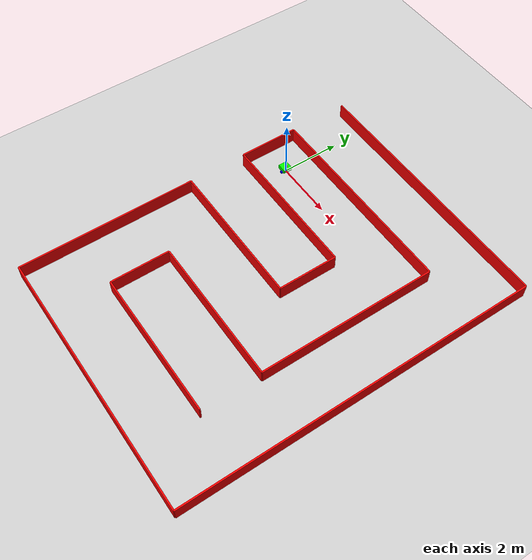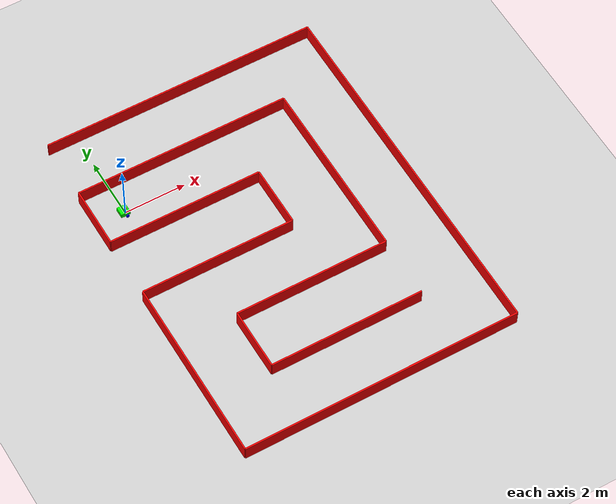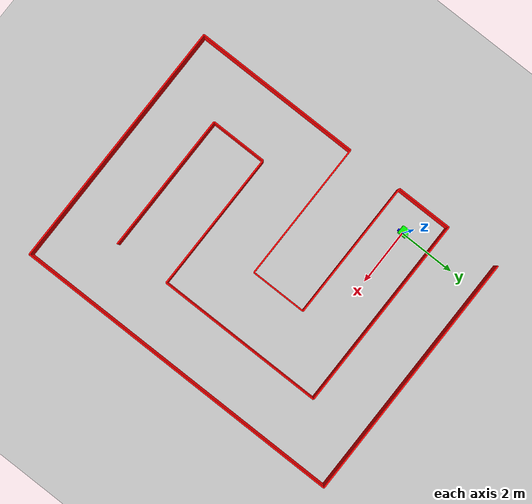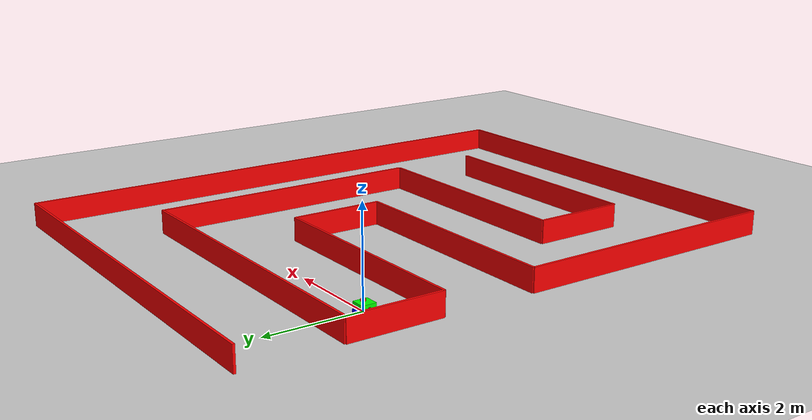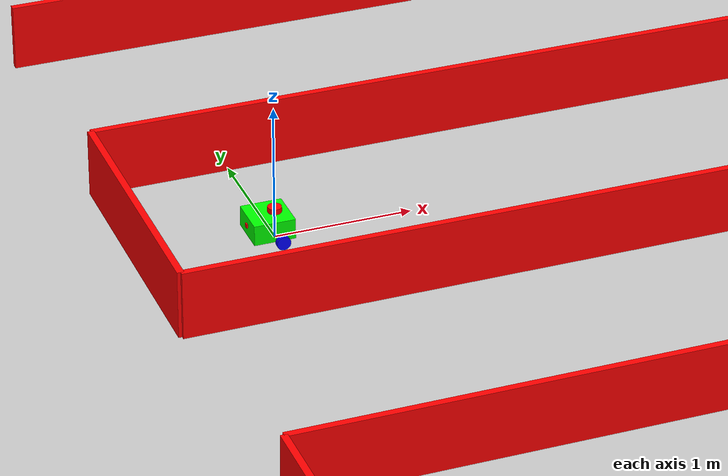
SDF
<?xml version="1.0" ?>
<sdf version="1.9">
    <world name="labexam1_4">
        <physics name="1ms" type="ignored">
            <max_step_size>0.001</max_step_size>
            <real_time_factor>1.0</real_time_factor>
        </physics>
        <plugin
        filename="libignition-gazebo-physics-system.so"
        name="ignition::gazebo::systems::Physics">
        </plugin>
        <plugin
        filename="libignition-gazebo-user-commands-system.so"
        name="ignition::gazebo::systems::UserCommands">
        </plugin>
        <plugin
        filename="libignition-gazebo-scene-broadcaster-system.so"
        name="ignition::gazebo::systems::SceneBroadcaster">
        </plugin>

        <plugin
        filename="libignition-gazebo-sensors-system.so"
        name="ignition::gazebo::systems::Sensors">
            <render_engine>ogre2</render_engine>
        </plugin>

        <light type="directional" name="sun">
            <cast_shadows>true</cast_shadows>
            <pose>0 0 10 0 0 0</pose>
            <diffuse>0.8 0.8 0.8 1</diffuse>
            <specular>0.2 0.2 0.2 1</specular>
            <attenuation>
                <range>1000</range>
                <constant>0.9</constant>
                <linear>0.01</linear>
                <quadratic>0.001</quadratic>
            </attenuation>
            <direction>0.5 0.5 -0.9</direction>
        </light>

        <model name="ground_plane">
            <static>true</static>
            <link name="link">
                <collision name="collision">
                    <geometry>
                        <plane>
                            <normal>0 0 1</normal>
                        </plane>
                    </geometry>
                </collision>
                <visual name="visual">
                    <geometry>
                        <plane>
                            <normal>0 0 1</normal>
                            <size>100 100</size>
                        </plane>
                    </geometry>
                    <material>
                        <ambient>0.8 0.8 0.8 1</ambient>
                        <diffuse>0.8 0.8 0.8 1</diffuse>
                        <specular>0.8 0.8 0.8 1</specular>
                    </material>
                </visual>
            </link>
        </model>

        <include>
            <name>robot1</name>
            <uri>file://src/lab_exam1/description/robot.sdf</uri>
        </include>

        <model name="maze">
            <pose>0 0 0 0 0 0</pose>
            <include>
                <uri>file://src/lab_exam1/description/maze.sdf</uri>
            </include>
        </model>
    </world>
</sdf>

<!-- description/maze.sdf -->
<sdf version='1.9'>
  <model name='castle'>
    <link name='base_link'>
      <inertial>
        <pose>2.807692307692308 -3.076923076923077 0.25 0 0 0</pose>
        <mass>6.5</mass>
        <inertia>
          <ixx>80.097684294871783</ixx>
          <ixy>-0.90384615384616041</ixy>
          <ixz>0</ixz>
          <iyy>51.228990384615351</iyy>
          <iyz>0</iyz>
          <izz>131.0558413461539</izz>
        </inertia>
      </inertial>
      <collision name='base_link_fixed_joint_lump__wall_10_collision'>
        <pose>3.5 -7 0.25 0 0 0</pose>
        <geometry>
          <box>
            <size>5 0.05 0.5</size>
          </box>
        </geometry>
      </collision>
      <collision name='base_link_fixed_joint_lump__wall_11_collision_1'>
        <pose>3.5 -9 0.25 0 0 0</pose>
        <geometry>
          <box>
            <size>9 0.05 0.5</size>
          </box>
        </geometry>
      </collision>
      <collision name='base_link_fixed_joint_lump__wall_12_collision_2'>
        <pose>8 -3 0.25 0 0 1.570796326794896</pose>
        <geometry>
          <box>
            <size>12 0.05 0.5</size>
          </box>
        </geometry>
      </collision>
      <collision name='base_link_fixed_joint_lump__wall_13_collision_3'>
        <pose>3.5 3 0.25 0 0 0</pose>
        <geometry>
          <box>
            <size>9 0.05 0.5</size>
          </box>
        </geometry>
      </collision>
      <collision name='base_link_fixed_joint_lump__wall_1_collision_4'>
        <pose>-1 0 0.25 0 0 1.570796326794896</pose>
        <geometry>
          <box>
            <size>2 0.05 0.5</size>
          </box>
        </geometry>
      </collision>
      <collision name='base_link_fixed_joint_lump__wall_2_collision_5'>
        <pose>2.5 1 0.25 0 0 0</pose>
        <geometry>
          <box>
            <size>7 0.05 0.5</size>
          </box>
        </geometry>
      </collision>
      <collision name='base_link_fixed_joint_lump__wall_3_collision_6'>
        <pose>1.5 -1 0.25 0 0 0</pose>
        <geometry>
          <box>
            <size>5 0.05 0.5</size>
          </box>
        </geometry>
      </collision>
      <collision name='base_link_fixed_joint_lump__wall_4_collision_7'>
        <pose>6 -2 0.25 0 0 1.570796326794896</pose>
        <geometry>
          <box>
            <size>6 0.05 0.5</size>
          </box>
        </geometry>
      </collision>
      <collision name='base_link_fixed_joint_lump__wall_5_collision_8'>
        <pose>4 -2 0.25 0 0 1.570796326794896</pose>
        <geometry>
          <box>
            <size>2 0.05 0.5</size>
          </box>
        </geometry>
      </collision>
      <collision name='base_link_fixed_joint_lump__wall_6_collision_9'>
        <pose>1.5 -3 0.25 0 0 0</pose>
        <geometry>
          <box>
            <size>5 0.05 0.5</size>
          </box>
        </geometry>
      </collision>
      <collision name='base_link_fixed_joint_lump__wall_7_collision_10'>
        <pose>3.5 -5 0.25 0 0 0</pose>
        <geometry>
          <box>
            <size>5 0.05 0.5</size>
          </box>
        </geometry>
      </collision>
      <collision name='base_link_fixed_joint_lump__wall_8_collision_11'>
        <pose>-1 -6 0.25 0 0 1.570796326794896</pose>
        <geometry>
          <box>
            <size>6 0.05 0.5</size>
          </box>
        </geometry>
      </collision>
      <collision name='base_link_fixed_joint_lump__wall_9_collision_12'>
        <pose>1 -6 0.25 0 0 1.570796326794896</pose>
        <geometry>
          <box>
            <size>2 0.05 0.5</size>
          </box>
        </geometry>
      </collision>
      <visual name='base_link_fixed_joint_lump__wall_10_visual'>
        <pose>3.5 -7 0.25 0 0 0</pose>
        <geometry>
          <box>
            <size>5 0.05 0.5</size>
          </box>
        </geometry>
        <material>
          <diffuse>1 0 0 1</diffuse>
          <ambient>1 0 0 1</ambient>
        </material>
      </visual>
      <visual name='base_link_fixed_joint_lump__wall_11_visual_1'>
        <pose>3.5 -9 0.25 0 0 0</pose>
        <geometry>
          <box>
            <size>9 0.05 0.5</size>
          </box>
        </geometry>
        <material>
          <diffuse>1 0 0 1</diffuse>
          <ambient>1 0 0 1</ambient>
        </material>
      </visual>
      <visual name='base_link_fixed_joint_lump__wall_12_visual_2'>
        <pose>8 -3 0.25 0 0 1.570796326794896</pose>
        <geometry>
          <box>
            <size>12 0.05 0.5</size>
          </box>
        </geometry>
        <material>
          <diffuse>1 0 0 1</diffuse>
          <ambient>1 0 0 1</ambient>
        </material>
      </visual>
      <visual name='base_link_fixed_joint_lump__wall_13_visual_3'>
        <pose>3.5 3 0.25 0 0 0</pose>
        <geometry>
          <box>
            <size>9 0.05 0.5</size>
          </box>
        </geometry>
        <material>
          <diffuse>1 0 0 1</diffuse>
          <ambient>1 0 0 1</ambient>
        </material>
      </visual>
      <visual name='base_link_fixed_joint_lump__wall_1_visual_4'>
        <pose>-1 0 0.25 0 0 1.570796326794896</pose>
        <geometry>
          <box>
            <size>2 0.05 0.5</size>
          </box>
        </geometry>
        <material>
          <diffuse>1 0 0 1</diffuse>
          <ambient>1 0 0 1</ambient>
        </material>
      </visual>
      <visual name='base_link_fixed_joint_lump__wall_2_visual_5'>
        <pose>2.5 1 0.25 0 0 0</pose>
        <geometry>
          <box>
            <size>7 0.05 0.5</size>
          </box>
        </geometry>
        <material>
          <diffuse>1 0 0 1</diffuse>
          <ambient>1 0 0 1</ambient>
        </material>
      </visual>
      <visual name='base_link_fixed_joint_lump__wall_3_visual_6'>
        <pose>1.5 -1 0.25 0 0 0</pose>
        <geometry>
          <box>
            <size>5 0.05 0.5</size>
          </box>
        </geometry>
        <material>
          <diffuse>1 0 0 1</diffuse>
          <ambient>1 0 0 1</ambient>
        </material>
      </visual>
      <visual name='base_link_fixed_joint_lump__wall_4_visual_7'>
        <pose>6 -2 0.25 0 0 1.570796326794896</pose>
        <geometry>
          <box>
            <size>6 0.05 0.5</size>
          </box>
        </geometry>
        <material>
          <diffuse>1 0 0 1</diffuse>
          <ambient>1 0 0 1</ambient>
        </material>
      </visual>
      <visual name='base_link_fixed_joint_lump__wall_5_visual_8'>
        <pose>4 -2 0.25 0 0 1.570796326794896</pose>
        <geometry>
          <box>
            <size>2 0.05 0.5</size>
          </box>
        </geometry>
        <material>
          <diffuse>1 0 0 1</diffuse>
          <ambient>1 0 0 1</ambient>
        </material>
      </visual>
      <visual name='base_link_fixed_joint_lump__wall_6_visual_9'>
        <pose>1.5 -3 0.25 0 0 0</pose>
        <geometry>
          <box>
            <size>5 0.05 0.5</size>
          </box>
        </geometry>
        <material>
          <diffuse>1 0 0 1</diffuse>
          <ambient>1 0 0 1</ambient>
        </material>
      </visual>
      <visual name='base_link_fixed_joint_lump__wall_7_visual_10'>
        <pose>3.5 -5 0.25 0 0 0</pose>
        <geometry>
          <box>
            <size>5 0.05 0.5</size>
          </box>
        </geometry>
        <material>
          <diffuse>1 0 0 1</diffuse>
          <ambient>1 0 0 1</ambient>
        </material>
      </visual>
      <visual name='base_link_fixed_joint_lump__wall_8_visual_11'>
        <pose>-1 -6 0.25 0 0 1.570796326794896</pose>
        <geometry>
          <box>
            <size>6 0.05 0.5</size>
          </box>
        </geometry>
        <material>
          <diffuse>1 0 0 1</diffuse>
          <ambient>1 0 0 1</ambient>
        </material>
      </visual>
      <visual name='base_link_fixed_joint_lump__wall_9_visual_12'>
        <pose>1 -6 0.25 0 0 1.570796326794896</pose>
        <geometry>
          <box>
            <size>2 0.05 0.5</size>
          </box>
        </geometry>
        <material>
          <diffuse>1 0 0 1</diffuse>
          <ambient>1 0 0 1</ambient>
        </material>
      </visual>
    </link>
    <frame name='wall_10_joint' attached_to='base_link'>
      <pose>3.5 -7 0.25 0 -0 0</pose>
    </frame>
    <frame name='wall_10' attached_to='wall_10_joint'/>
    <frame name='wall_11_joint' attached_to='base_link'>
      <pose>3.5 -9 0.25 0 -0 0</pose>
    </frame>
    <frame name='wall_11' attached_to='wall_11_joint'/>
    <frame name='wall_12_joint' attached_to='base_link'>
      <pose>8 -3 0.25 0 -0 1.5708</pose>
    </frame>
    <frame name='wall_12' attached_to='wall_12_joint'/>
    <frame name='wall_13_joint' attached_to='base_link'>
      <pose>3.5 3 0.25 0 -0 0</pose>
    </frame>
    <frame name='wall_13' attached_to='wall_13_joint'/>
    <frame name='wall_1_joint' attached_to='base_link'>
      <pose>-1 0 0.25 0 -0 1.5708</pose>
    </frame>
    <frame name='wall_1' attached_to='wall_1_joint'/>
    <frame name='wall_2_joint' attached_to='base_link'>
      <pose>2.5 1 0.25 0 -0 0</pose>
    </frame>
    <frame name='wall_2' attached_to='wall_2_joint'/>
    <frame name='wall_3_joint' attached_to='base_link'>
      <pose>1.5 -1 0.25 0 -0 0</pose>
    </frame>
    <frame name='wall_3' attached_to='wall_3_joint'/>
    <frame name='wall_4_joint' attached_to='base_link'>
      <pose>6 -2 0.25 0 -0 1.5708</pose>
    </frame>
    <frame name='wall_4' attached_to='wall_4_joint'/>
    <frame name='wall_5_joint' attached_to='base_link'>
      <pose>4 -2 0.25 0 -0 1.5708</pose>
    </frame>
    <frame name='wall_5' attached_to='wall_5_joint'/>
    <frame name='wall_6_joint' attached_to='base_link'>
      <pose>1.5 -3 0.25 0 -0 0</pose>
    </frame>
    <frame name='wall_6' attached_to='wall_6_joint'/>
    <frame name='wall_7_joint' attached_to='base_link'>
      <pose>3.5 -5 0.25 0 -0 0</pose>
    </frame>
    <frame name='wall_7' attached_to='wall_7_joint'/>
    <frame name='wall_8_joint' attached_to='base_link'>
      <pose>-1 -6 0.25 0 -0 1.5708</pose>
    </frame>
    <frame name='wall_8' attached_to='wall_8_joint'/>
    <frame name='wall_9_joint' attached_to='base_link'>
      <pose>1 -6 0.25 0 -0 1.5708</pose>
    </frame>
    <frame name='wall_9' attached_to='wall_9_joint'/>
  </model>
</sdf>

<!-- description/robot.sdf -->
<sdf version='1.9'>
  <model name='robot'>
    <link name='base_link'>
      <inertial>
        <pose>0.103125 0 0.0340625 0 0 0</pose>
        <mass>1.6000000000000001</mass>
        <inertia>
          <ixx>0.0096094270833333318</ixx>
          <ixy>0</ixy>
          <ixz>0.0037453124999999999</ixz>
          <iyy>0.013443802083333329</iyy>
          <iyz>0</iyz>
          <izz>0.012459375</izz>
        </inertia>
      </inertial>
      <collision name='base_link_fixed_joint_lump__chassis_collision'>
        <pose>0.04999999999999999 0 0.075 0 0 0</pose>
        <geometry>
          <box>
            <size>0.3 0.3 0.15</size>
          </box>
        </geometry>
      </collision>
      <collision name='base_link_fixed_joint_lump__caster_wheel_collision_1'>
        <pose>0.14 0 0 0 0 0</pose>
        <geometry>
          <sphere>
            <radius>0.050000000000000003</radius>
          </sphere>
        </geometry>
        <surface>
          <contact>
            <ode/>
          </contact>
          <friction>
            <ode>
              <mu>0</mu>
              <mu2>0</mu2>
            </ode>
          </friction>
        </surface>
      </collision>
      <collision name='base_link_fixed_joint_lump__laser_frame_collision_2'>
        <pose>0 0 0.17 0 0 0</pose>
        <geometry>
          <cylinder>
            <length>0.040000000000000001</length>
            <radius>0.050000000000000003</radius>
          </cylinder>
        </geometry>
        <surface>
          <contact>
            <ode/>
          </contact>
          <friction>
            <ode/>
          </friction>
        </surface>
      </collision>
      <visual name='base_link_fixed_joint_lump__chassis_visual'>
        <pose>0.04999999999999999 0 0.075 0 0 0</pose>
        <geometry>
          <box>
            <size>0.3 0.3 0.15</size>
          </box>
        </geometry>
        <material>
          <diffuse>0 1 0 1</diffuse>
          <ambient>0 1 0 1</ambient>
        </material>
      </visual>
      <visual name='base_link_fixed_joint_lump__camera_link_visual_1'>
        <pose>0.205 0 0.08 0 0 0</pose>
        <geometry>
          <box>
            <size>0.01 0.03 0.03</size>
          </box>
        </geometry>
        <material>
          <diffuse>1 0 0 1</diffuse>
          <ambient>1 0 0 1</ambient>
        </material>
      </visual>
      <visual name='base_link_fixed_joint_lump__caster_wheel_visual_2'>
        <pose>0.14 0 0 0 0 0</pose>
        <geometry>
          <sphere>
            <radius>0.050000000000000003</radius>
          </sphere>
        </geometry>
        <material>
          <diffuse>0 0 1 1</diffuse>
          <ambient>0 0 1 1</ambient>
        </material>
      </visual>
      <visual name='base_link_fixed_joint_lump__laser_frame_visual_3'>
        <pose>0 0 0.17 0 0 0</pose>
        <geometry>
          <cylinder>
            <length>0.040000000000000001</length>
            <radius>0.050000000000000003</radius>
          </cylinder>
        </geometry>
        <material>
          <diffuse>1 0 0 1</diffuse>
          <ambient>1 0 0 1</ambient>
        </material>
      </visual>
      <sensor name='camera' type='camera'>
        <camera>
          <horizontal_fov>1.089</horizontal_fov>
          <image>
            <format>R8G8B8</format>
            <width>640</width>
            <height>480</height>
          </image>
          <clip>
            <near>0.050000000000000003</near>
            <far>12</far>
          </clip>
        </camera>
        <always_on>true</always_on>
        <update_rate>30</update_rate>
        <visualize>true</visualize>
        <topic>camera/image_raw</topic>
        <pose>0.205 0 0.08 0 -0 0</pose>
      </sensor>
      <sensor name='lidar' type='gpu_lidar'>
        <pose relative_to='laser_frame'>0 0 0 0 0 0</pose>
        <topic>lidar</topic>
        <update_rate>10</update_rate>
        <ray>
          <scan>
            <horizontal>
              <samples>360</samples>
              <resolution>1</resolution>
              <min_angle>-3.1415926535897931</min_angle>
              <max_angle>3.1415926535897931</max_angle>
            </horizontal>
            <vertical>
              <samples>1</samples>
              <resolution>0.01</resolution>
              <min_angle>0</min_angle>
              <max_angle>0</max_angle>
            </vertical>
          </scan>
          <range>
            <min>0.050000000000000003</min>
            <max>10</max>
            <resolution>0.01</resolution>
          </range>
        </ray>
        <always_on>true</always_on>
        <visualize>true</visualize>
      </sensor>
    </link>
    <joint name='left_wheel_joint' type='revolute'>
      <pose relative_to='base_link'>0 0.175 0 -1.570796326794896 0 0</pose>
      <parent>base_link</parent>
      <child>left_wheel</child>
      <axis>
        <xyz>0 0 1</xyz>
        <limit>
          <lower>-10000000000000000</lower>
          <upper>10000000000000000</upper>
        </limit>
        <dynamics>
          <spring_reference>0</spring_reference>
          <spring_stiffness>0</spring_stiffness>
        </dynamics>
      </axis>
    </joint>
    <link name='left_wheel'>
      <pose relative_to='left_wheel_joint'>0 0 0 0 0 0</pose>
      <inertial>
        <pose>0 0 0 0 0 0</pose>
        <mass>0.10000000000000001</mass>
        <inertia>
          <ixx>7.5833333333333352e-05</ixx>
          <ixy>0</ixy>
          <ixz>0</ixz>
          <iyy>7.5833333333333352e-05</iyy>
          <iyz>0</iyz>
          <izz>0.000125</izz>
        </inertia>
      </inertial>
      <collision name='left_wheel_collision'>
        <pose>0 0 0 0 0 0</pose>
        <geometry>
          <cylinder>
            <length>0.040000000000000001</length>
            <radius>0.050000000000000003</radius>
          </cylinder>
        </geometry>
      </collision>
      <visual name='left_wheel_visual'>
        <pose>0 0 0 0 0 0</pose>
        <geometry>
          <cylinder>
            <length>0.040000000000000001</length>
            <radius>0.050000000000000003</radius>
          </cylinder>
        </geometry>
        <material>
          <diffuse>0 0 1 1</diffuse>
          <ambient>0 0 1 1</ambient>
        </material>
      </visual>
    </link>
    <joint name='right_wheel_joint' type='revolute'>
      <pose relative_to='base_link'>0 -0.175 0 1.570796326794896 0 0</pose>
      <parent>base_link</parent>
      <child>right_wheel</child>
      <axis>
        <xyz>0 0 -1</xyz>
        <limit>
          <lower>-10000000000000000</lower>
          <upper>10000000000000000</upper>
        </limit>
        <dynamics>
          <spring_reference>0</spring_reference>
          <spring_stiffness>0</spring_stiffness>
        </dynamics>
      </axis>
    </joint>
    <link name='right_wheel'>
      <pose relative_to='right_wheel_joint'>0 0 0 0 0 0</pose>
      <inertial>
        <pose>0 0 0 0 0 0</pose>
        <mass>0.10000000000000001</mass>
        <inertia>
          <ixx>7.5833333333333352e-05</ixx>
          <ixy>0</ixy>
          <ixz>0</ixz>
          <iyy>7.5833333333333352e-05</iyy>
          <iyz>0</iyz>
          <izz>0.000125</izz>
        </inertia>
      </inertial>
      <collision name='right_wheel_collision'>
        <pose>0 0 0 0 0 0</pose>
        <geometry>
          <cylinder>
            <length>0.040000000000000001</length>
            <radius>0.050000000000000003</radius>
          </cylinder>
        </geometry>
      </collision>
      <visual name='right_wheel_visual'>
        <pose>0 0 0 0 0 0</pose>
        <geometry>
          <cylinder>
            <length>0.040000000000000001</length>
            <radius>0.050000000000000003</radius>
          </cylinder>
        </geometry>
        <material>
          <diffuse>0 0 1 1</diffuse>
          <ambient>0 0 1 1</ambient>
        </material>
      </visual>
    </link>
    <pose>0 0 0.05 0 0 3.141592653589793</pose>
    <plugin name='ignition::gazebo::systems::DiffDrive' filename='libignition-gazebo-diff-drive-system.so'>
      <left_joint>left_wheel_joint</left_joint>
      <right_joint>right_wheel_joint</right_joint>
      <wheel_separation>0.3</wheel_separation>
      <wheel_radius>0.05</wheel_radius>
      <odom_publish_frequency>1</odom_publish_frequency>
      <topic>cmd_vel</topic>
    </plugin>
    <plugin name='ignition::gazebo::systems::JointStatePublisher' filename='libignition-gazebo-joint-state-publisher-system'/>
    <plugin name='ignition::gazebo::systems::OdometryPublisher' filename='libignition-gazebo-odometry-publisher-system'>
      <odom_frame>world</odom_frame>
      <robot_base_frame>base_link</robot_base_frame>
    </plugin>
    <frame name='camera_optical_joint' attached_to='camera_link'>
      <pose>0 0 0 -1.5708 -0 -1.5708</pose>
    </frame>
    <frame name='camera_link_optical' attached_to='camera_optical_joint'/>
    <frame name='camera_joint' attached_to='chassis'>
      <pose>0.305 0 0.08 0 -0 0</pose>
    </frame>
    <frame name='camera_link' attached_to='camera_joint'/>
    <frame name='caster_wheel_joint' attached_to='chassis'>
      <pose>0.24 0 0 0 -0 0</pose>
    </frame>
    <frame name='caster_wheel' attached_to='caster_wheel_joint'/>
    <frame name='laser_joint' attached_to='chassis'>
      <pose>0.1 0 0.17 0 -0 0</pose>
    </frame>
    <frame name='laser_frame' attached_to='laser_joint'/>
    <frame name='chassis_joint' attached_to='base_link'>
      <pose>-0.1 0 0 0 -0 0</pose>
    </frame>
    <frame name='chassis' attached_to='chassis_joint'/>
  </model>
</sdf>
